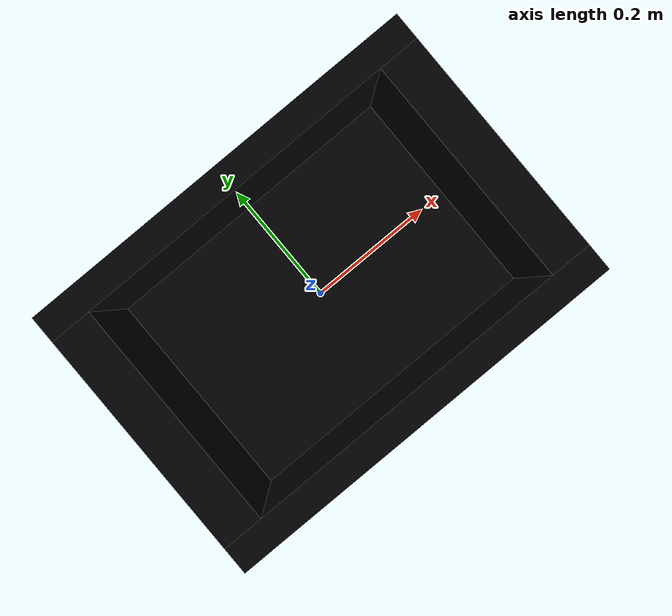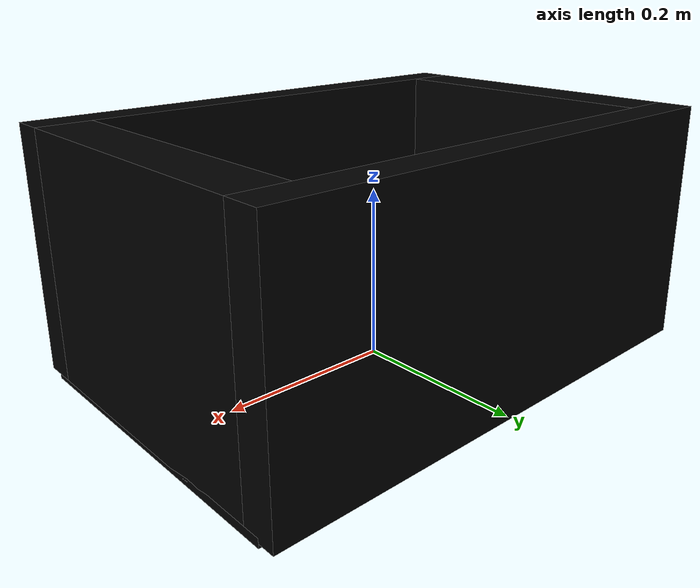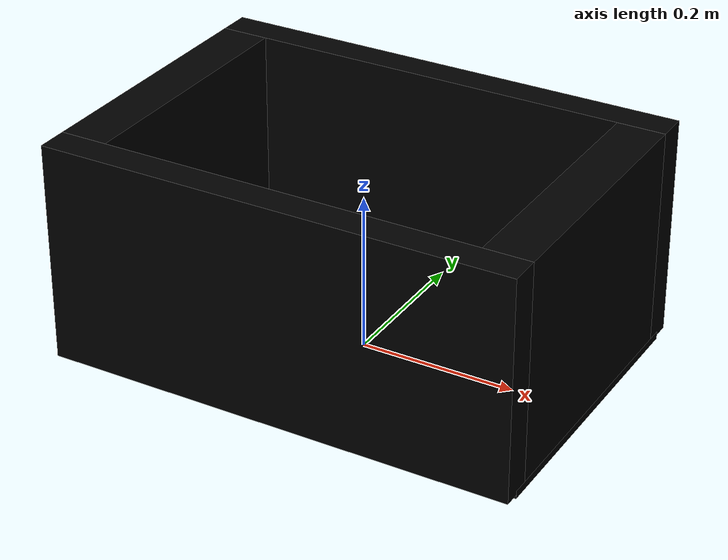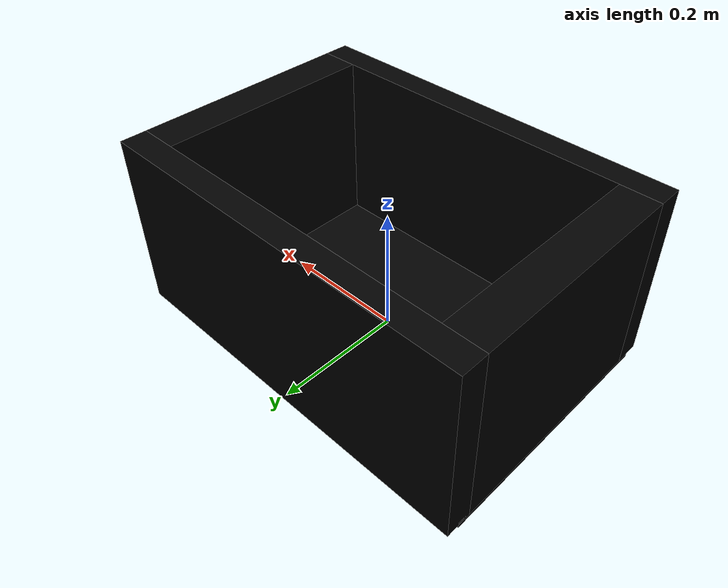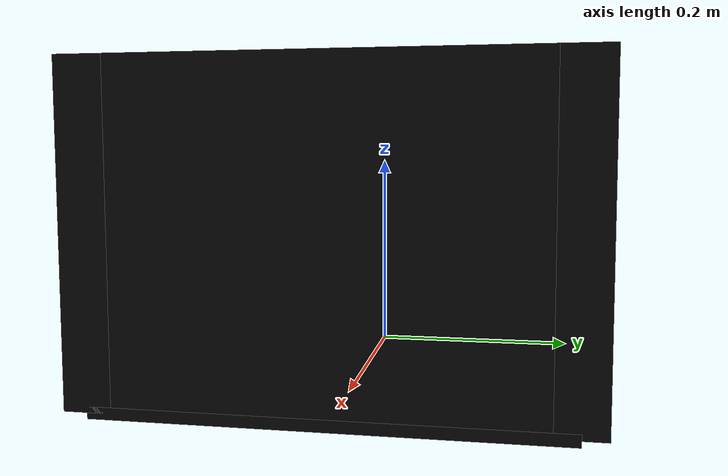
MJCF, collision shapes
<mujoco model="yellow_tote">
  <compiler angle="radian"/>

  <asset>
    <material name="yellow_tote_mat" rgba="0.85 0.73 0.1 1.0" specular="0.5" shininess="0.5"/>
    <mesh name="yellow_tote_visual" file="yellow_tote_visual.obj"/>
  </asset>

  <worldbody>
    <body name="yellow_tote" pos="0 0 0">
      <freejoint name="yellow_tote_joint"/>

      <!-- Collision geometry - hollow tote (floor + 4 walls) -->
      <!-- Floor -->
      <geom name="yellow_tote_floor"
            type="box"
            pos="0 0 0.005"
            size="0.3 0.19 0.005"
            mass="0.3"
            friction="0.7 0.005 0.0001"
            contype="1"
            conaffinity="1"
            rgba="0 0 0 0"/>

      <!-- Front wall (negative Y) -->
      <geom name="yellow_tote_wall_front"
            type="box"
            pos="0 -0.19 0.145"
            size="0.3 0.02 0.14"
            mass="0.1"
            friction="0.7 0.005 0.0001"
            contype="1"
            conaffinity="1"
            rgba="0 0 0 0"/>

      <!-- Back wall (positive Y) -->
      <geom name="yellow_tote_wall_back"
            type="box"
            pos="0 0.19 0.145"
            size="0.3 0.02 0.14"
            mass="0.1"
            friction="0.7 0.005 0.0001"
            contype="1"
            conaffinity="1"
            rgba="0 0 0 0"/>

      <!-- Left wall (negative X) -->
      <geom name="yellow_tote_wall_left"
            type="box"
            pos="-0.27 0 0.145"
            size="0.03 0.17 0.14"
            mass="0.1"
            friction="0.7 0.005 0.0001"
            contype="1"
            conaffinity="1"
            rgba="0 0 0 0"/>

      <!-- Right wall (positive X) -->
      <geom name="yellow_tote_wall_right"
            type="box"
            pos="0.27 0 0.145"
            size="0.03 0.17 0.14"
            mass="0.1"
            friction="0.7 0.005 0.0001"
            contype="1"
            conaffinity="1"
            rgba="0 0 0 0"/>

      <!-- Visual mesh -->
      <geom name="yellow_tote_visual"
            type="mesh"
            mesh="yellow_tote_visual"
            material="yellow_tote_mat"
            contype="0"
            conaffinity="0"/>
    </body>
  </worldbody>
</mujoco>
